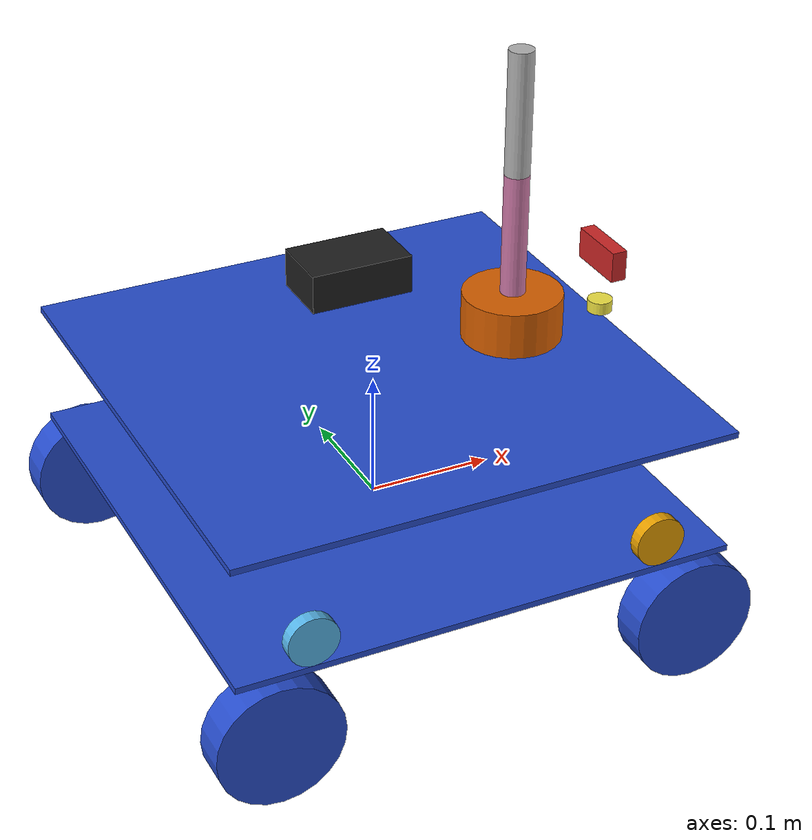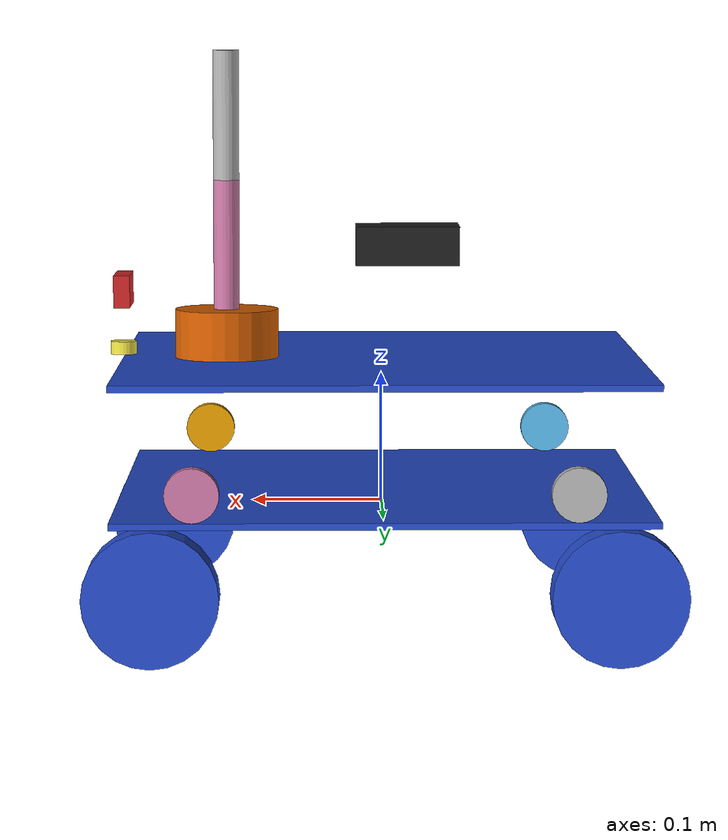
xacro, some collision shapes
<?xml version="1.0"?>
<robot name="ethan" xmlns:xacro="http://ros.org/wiki/xacro">

  <xacro:property name="pi" value="3.1415" />
  <xacro:property name="camera_link" value="0.05" /> <!-- Size of square 'camera' box -->
  <xacro:property name="length" value="0.4" />
  <xacro:property name="width" value="0.4" />
  <xacro:property name="height" value="0.005" />
  <xacro:property name="arm_l" value="0.1" />
  <xacro:property name="arm_r" value="0.01" />
  <xacro:property name="arm2_mass" value="0.2" />
  <xacro:property name="arm2_l" value="0.09" />
  <xacro:property name="arm2_r" value="0.01" />
  <xacro:property name="arm_mass" value="0.2" />
  <xacro:property name="disc_l" value="0.04" />
  <xacro:property name="disc_r" value="0.04" />
  <xacro:property name="disc_mass" value="0.2" />
  <xacro:property name="holder_l" value="0.01" />
  <xacro:property name="holder_r" value="0.01" />
  <xacro:property name="holder_mass" value="0.2" />
  <xacro:property name="mass" value="50" />
  <xacro:property name="hinge_r" value="0.02" />
  <xacro:property name="hinge_l" value="0.01" />
  <xacro:property name="hinge_mass" value="0.2" />
  <xacro:include filename="$(find ethan_description)/urdf/macro.xacro" />
  <xacro:include filename="$(find ethan_description)/urdf/gazebo.xacro" />
  <xacro:property name="wheel_mass" value="2" />
  <xacro:property name="wheel_radius" value="0.05" />
  <xacro:property name="wheel_length" value="0.03" />
  <xacro:property name="upper_mass" value="0.2" />

  <xacro:macro name="default_inertial" params="mass">
    <inertial>
      <mass value="${mass}" />
      <inertia ixx="1.0" ixy="0.0" ixz="0.0" iyy="1.0" iyz="0.0" izz="1.0" />
    </inertial>
  </xacro:macro>

   <link name="base_footprint"/>

  <joint name="base_joint" type="fixed">
    <parent link="base_footprint"/>
    <child link="link_chassis"/>
    <origin xyz="0.0 0.0 0.010" rpy="0 0 0"/>
  </joint>

  <link name="link_chassis">
   <!-- pose and inertial -->
   <inertial>
    <mass value="${mass}" />
    <inertia ixx="${mass*(width*width + height*height)/12}" ixy="0.0" ixz="0.0" iyy="${mass*(width*width + height*height)/12}" iyz="0.0" izz="${mass*(width*width + length*length)/12}" />
  </inertial>

  <collision name="collision_chassis">
    <geometry>
      <box size="${length} ${width} ${height}"/>
    </geometry>
  </collision>
  <visual>
    <origin rpy="0 0 0" xyz="0 0 0"/>
    <geometry>
      <box size="${length} ${width} ${height}"/>
    </geometry>
    <material name="blue"/>
  </visual>

</link>

<xacro:link_wheel name="link_right_wheel_front" mass="${wheel_mass}" r="${wheel_radius}" l="${wheel_length}" />
<xacro:link_wheel name="link_left_wheel_front" mass="${wheel_mass}" r="${wheel_radius}" l="${wheel_length}"/>
<xacro:link_wheel name="link_right_wheel_back" mass="${wheel_mass}" r="${wheel_radius}" l="${wheel_length}" />
<xacro:link_wheel name="link_left_wheel_back" mass="${wheel_mass}" r="${wheel_radius}" l="${wheel_length}"/>
<xacro:joint_wheel name="joint_right_wheel_front"  child="link_right_wheel_front"  origin_xyz="0.17 -0.195 -0.0525"  />
<xacro:joint_wheel name="joint_left_wheel_front"   child="link_left_wheel_front"   origin_xyz="0.17 0.195 -0.0525"  />
<xacro:joint_wheel name="joint_right_wheel_back"  child="link_right_wheel_back"  origin_xyz="-0.17 -0.195 -0.0525"  />
<xacro:joint_wheel name="joint_left_wheel_back"   child="link_left_wheel_back"   origin_xyz="-0.17 0.195 -0.0525"  />

<link name="left_scissor_hinge_front">
  <inertial>
   <mass value="0.2"/>
   <origin rpy="0 1.5707 1.5707" xyz="0 0 0"/>
   <inertia ixx="${hinge_mass*(3*hinge_r*hinge_r+ hinge_l*hinge_l)/12}" ixy = "0" ixz = "0" iyy="${hinge_mass*(3*hinge_r*hinge_r+hinge_l*hinge_l)/12}" iyz = "0" izz="${hinge_mass*(hinge_r*hinge_r)/2}" />
 </inertial>
 <collision name="left_scissor_hinge_front_collision">
  <origin rpy="0 1.5707 1.5707" xyz="0 0 0"/>
  <geometry>
    <cylinder length="${hinge_l}" radius="${hinge_r}"/>
  </geometry>
</collision>
<visual name="left_scissor_hinge_front_visual">
  <origin rpy="0 1.5707 1.5707" xyz="0 0 0"/>
  <geometry>
    <cylinder length="${hinge_l}" radius="${hinge_r}"/>
  </geometry>
</visual>
</link>

<joint name="left_scissor_hinge_front_joint" type="fixed">
  <axis xyz="0 1 0" />
  <origin xyz="0.14 0.195 0.0225" rpy="0 0 0"/>
  <parent link="link_chassis"/>
  <child link="left_scissor_hinge_front"/>
</joint>

<link name="left_scissor_hinge_back">
  <inertial>
   <mass value="0.2"/>
   <origin rpy="0 1.5707 1.5707" xyz="0 0 0"/>
   <inertia ixx="${hinge_mass*(3*hinge_r*hinge_r+ hinge_l*hinge_l)/12}" ixy = "0" ixz = "0" iyy="${hinge_mass*(3*hinge_r*hinge_r+hinge_l*hinge_l)/12}" iyz = "0" izz="${hinge_mass*(hinge_r*hinge_r)/2}" />
 </inertial>
 <collision name="left_scissor_hinge_back_back_collision">
  <origin rpy="0 1.5707 1.5707" xyz="0 0 0"/>
  <geometry>
    <cylinder length="${hinge_l}" radius="${hinge_r}"/>
  </geometry>
</collision>
<visual name="left_scissor_hinge_back_visual">
  <origin rpy="0 1.5707 1.5707" xyz="0 0 0"/>
  <geometry>
    <cylinder length="${hinge_l}" radius="${hinge_r}"/>
  </geometry>
</visual>
</link>

<joint name="left_scissor_hinge_back_joint" type="prismatic">
  <origin xyz="-0.14 0.195 0.0225" rpy="0.0 0.0 0.0"/>
  <parent link="link_chassis" />
  <child link="left_scissor_hinge_back" />
  <axis xyz="1 0 0" />
  <limit effort="10000" lower="0.0" upper="0.15" velocity="1" />
</joint>

<link name="right_scissor_hinge_front">
  <inertial>
   <mass value="0.2"/>
   <origin rpy="0 1.5707 1.5707" xyz="0 0 0"/>
   <inertia ixx="${hinge_mass*(3*hinge_r*hinge_r+ hinge_l*hinge_l)/12}" ixy = "0" ixz = "0" iyy="${hinge_mass*(3*hinge_r*hinge_r+hinge_l*hinge_l)/12}" iyz = "0" izz="${hinge_mass*(hinge_r*hinge_r)/2}" />
 </inertial>
 <collision name="right_scissor_hinge_front_collision">
  <origin rpy="0 1.5707 1.5707" xyz="0 0 0"/>
  <geometry>
    <cylinder length="${hinge_l}" radius="${hinge_r}"/>
  </geometry>
</collision>
<visual name="right_scissor_hinge_front_visual">
  <origin rpy="0 1.5707 1.5707" xyz="0 0 0"/>
  <geometry>
    <cylinder length="${hinge_l}" radius="${hinge_r}"/>
  </geometry>
</visual>
</link>

<joint name="right_scissor_hinge_front_joint" type="fixed">
  <axis xyz="0 1 0" />
  <origin xyz="0.14 -0.195 0.0225" rpy="0 0 0"/>
  <parent link="link_chassis"/>
  <child link="right_scissor_hinge_front"/>
</joint>

<link name="right_scissor_hinge_back">
  <inertial>
   <mass value="0.2"/>
   <origin rpy="0 1.5707 1.5707" xyz="0 0 0"/>
   <inertia ixx="${hinge_mass*(3*hinge_r*hinge_r+ hinge_l*hinge_l)/12}" ixy = "0" ixz = "0" iyy="${hinge_mass*(3*hinge_r*hinge_r+hinge_l*hinge_l)/12}" iyz = "0" izz="${hinge_mass*(hinge_r*hinge_r)/2}" />
 </inertial>
 <collision name="right_scissor_hinge_back_back_collision">
  <origin rpy="0 1.5707 1.5707" xyz="0 0 0"/>
  <geometry>
    <cylinder length="${hinge_l}" radius="${hinge_r}"/>
  </geometry>
</collision>
<visual name="right_scissor_hinge_back_visual">
  <origin rpy="0 1.5707 1.5707" xyz="0 0 0"/>
  <geometry>
    <cylinder length="${hinge_l}" radius="${hinge_r}"/>
  </geometry>
</visual>
</link>

<joint name="right_scissor_hinge_back_joint" type="prismatic">
  <origin xyz="-0.14 -0.195 0.0225" rpy="0.0 0.0 0.0"/>
  <parent link="link_chassis" />
  <child link="right_scissor_hinge_back" />
  <axis xyz="1 0 0" />
  <limit effort="10000" lower="0.0" upper="0.15" velocity="1" />
</joint>

<link name="upper_platform">
  <inertial>
    <mass value="${upper_mass}" />
    <inertia ixx="${upper_mass*(width*width + height*height)/12}" ixy="0.0" ixz="0.0" iyy="${upper_mass*(width*width + height*height)/12}" iyz="0.0" izz="${upper_mass*(width*width + length*length)/12}" />
  </inertial>

  <collision name="collision_chassis">
    <geometry>
      <box size="${length} ${width} ${height}"/>
    </geometry>
  </collision>

  <visual>
    <origin rpy="0 0 0" xyz="0 0 0"/>
    <geometry>
      <box size="${length} ${width} ${height}"/>
    </geometry>
    <material name="blue"/>
  </visual>

</link>

<joint name="platform_joint" type="prismatic">
  <origin xyz="0 0 0.1" rpy="0.0 0.0 0.0"/>
  <parent link="link_chassis" />
  <child link="upper_platform" />
  <axis xyz="0 0 1" />
  <limit effort="10000" lower="0" upper="0.80" velocity="1" />
</joint>

<link name="holder">
  <inertial>
    <mass value="0.2"/>
    <origin rpy="0 0 0" xyz="0 0 0"/>
    <inertia ixx="${holder_mass*(3*holder_r*holder_r+ holder_l*holder_l)/12}" ixy = "0" ixz = "0" iyy="${holder_mass*(3*holder_r*holder_r+holder_l*holder_l)/12}" iyz = "0" izz="${holder_mass*(holder_r*holder_r)/2}" />
  </inertial>
  <collision name="holder_collision">
    <origin rpy="0 0 0" xyz="0 0 ${holder_l/2}"/>
    <geometry>
      <cylinder length="${holder_l}" radius="${ holder_r}"/>
    </geometry>
  </collision>
  <visual name="disc_visual">
    <origin rpy="0 0 0" xyz="0 0 ${holder_l/2}"/>
    <geometry>
      <cylinder length="${holder_l}" radius="${holder_r}"/>
    </geometry>
  </visual>
</link>

<joint name="holder_joint" type="revolute">
  <origin xyz="0.2 0 ${holder_l/2}" rpy="0 0 0"/>
  <parent link="upper_platform"/>
  <child link="holder"/>
  <axis xyz="0 0 1" />
  <limit effort="3900" lower="-1.570796" upper="1.570796" velocity="1"/>
</joint>

<joint name="camera_joint" type="fixed">
  <axis xyz="0 1 0" />
  <origin xyz="0 0 ${holder_l/2 + camera_link/2 + 0.02}" rpy="0 0 0"/>
  <parent link="holder"/>
  <child link="camera_link"/>
</joint>

<!-- Camera -->
<link name="camera_link">
  <collision>
    <origin xyz="0 0 0" rpy="0 0 0"/>
    <geometry>
      <box size="${camera_link/2} ${camera_link} ${camera_link/2}"/>
    </geometry>
  </collision>

  <visual>
    <origin xyz="0 0 0" rpy="0 0 0"/>
    <geometry>
      <box size="${camera_link/4} ${camera_link} ${camera_link/2}"/>
    </geometry>
    <material name="red"/>
  </visual>

  <inertial>
    <mass value="1e-5" />
    <origin xyz="0 0 0" rpy="0 0 0"/>
    <inertia ixx="1e-6" ixy="0" ixz="0" iyy="1e-6" iyz="0" izz="1e-6" />
  </inertial>
</link>

<link name="disc">
  <inertial>
    <mass value="0.2"/>
    <origin rpy="0 0 0" xyz="0 0 0"/>
    <inertia ixx="${disc_mass*(3*disc_r*disc_r+ disc_l*disc_l)/12}" ixy = "0" ixz = "0" iyy="${disc_mass*(3*disc_r*disc_r+disc_l*disc_l)/12}" iyz = "0" izz="${disc_mass*(disc_r*disc_r)/2}" />
  </inertial>
  <collision name="arm1_collision">
    <origin rpy="0 0 0" xyz="0 0 ${disc_l/2}"/>
    <geometry>
      <cylinder length="${disc_l}" radius="${ disc_r}"/>
    </geometry>
  </collision>
  <visual name="disc_visual">
    <origin rpy="0 0 0" xyz="0 0 ${disc_l/2}"/>
    <geometry>
      <cylinder length="${disc_l}" radius="${disc_r}"/>
    </geometry>
  </visual>
</link>

<joint name="disc_joint" type="revolute">
  <origin xyz="0.12 0 0" rpy="0 0 0"/>
  <parent link="upper_platform"/>
  <child link="disc"/>
  <axis xyz="0 0 1" />
  <limit effort="3900" lower="-1.570796" upper="1.570796" velocity="1"/>
</joint>

<link name="arm1">
  <inertial>
    <mass value="0.2"/>
    <origin rpy="0 0 0" xyz="0 0 ${arm_l/2}"/>
    <inertia ixx="${arm_mass*(3*arm_r*arm_r+arm_l*arm_l)/12}" ixy = "0" ixz = "0" iyy="${arm_mass*(3*arm_r*arm_r+arm_l*arm_l)/12}" iyz = "0" izz="${arm_mass*(arm_r*arm_r)/2}" />
  </inertial>
  <collision name="arm1_collision">
    <origin rpy="0 0 0" xyz="0 0 ${arm_l/2}"/>
    <geometry>
      <cylinder length="${arm_l}" radius="${arm_r}"/>
    </geometry>
  </collision>
  <visual name="arm1_visual">
    <origin rpy="0 0 0" xyz="0 0 ${arm_l/2}"/>
    <geometry>
      <cylinder length="${arm_l}" radius="${arm_r}"/>
    </geometry>
  </visual>
</link>

<joint name="arm1_joint" type="revolute">
  <origin xyz="0 0 ${disc_l}" rpy="0 0 0"/>
  <parent link="disc"/>
  <child link="arm1"/>
  <axis xyz="0 1 0" />
  <limit effort="3900" lower="-1.570796" upper="1.570796" velocity="1"/>
</joint>

<link name="arm2">
  <inertial>
    <mass value="0.2"/>
    <origin rpy="0 0 0" xyz="0 0 ${arm_l/2}"/>
    <inertia ixx="${arm_mass*(3*arm_r*arm_r+arm_l*arm_l)/12}" ixy = "0" ixz = "0" iyy="${arm_mass*(3*arm_r*arm_r+arm_l*arm_l)/12}" iyz = "0" izz="${arm_mass*(arm_r*arm_r)/2}" />
  </inertial>
  <collision name="arm2_collision">
    <origin rpy="0 0 0" xyz="0 0 ${arm_l/2}"/>
    <geometry>
      <cylinder length="${arm_l}" radius="${arm_r}"/>
    </geometry>
  </collision>
  <visual name="arm2_visual">
    <origin rpy="0 0 0" xyz="0 0 ${arm_l/2}"/>
    <geometry>
      <cylinder length="${arm_l}" radius="${arm_r}"/>
    </geometry>
  </visual>
</link>

<joint name="arm2_joint" type="revolute">
  <origin xyz="0 0 ${arm_l}" rpy="0 0 0"/>
  <parent link="arm1"/>
  <child link="arm2"/>
  <axis xyz="0 1 0" />
  <limit effort="3900" lower="0" upper="3.14" velocity="1"/>

</joint>

<!-- Hokuyo Laser -->
<link name="hokuyo_link">
  <collision>
    <origin xyz="0 0 0" rpy="0 0 0"/>
    <geometry>
      <box size="0.08 0.05 0.03"/>
    </geometry>
  </collision>

  <visual>
    <origin xyz="0 0 0" rpy="0 0 0"/>
    <geometry>
      <mesh filename="package://ethan_description/mesh/lds.stl" scale="0.001 0.001 0.001"/>
      <box size="0.08 0.05 0.03"/>
    </geometry>
  </visual>

  <inertial>
    <mass value="1e-5" />
    <origin xyz="0 0 0" rpy="0 0 0"/>
    <inertia ixx="1e-6" ixy="0" ixz="0" iyy="1e-6" iyz="0" izz="1e-6" />
  </inertial>
</link>

<joint name="hokuyo_joint" type="fixed">
  <axis xyz="0 1 0" />
  <origin xyz="-0.02 0 0.09" rpy="0 0 0"/>
  <parent link="upper_platform"/>
  <child link="hokuyo_link"/>
</joint>

<transmission name="link_left_wheel_front_trans">
  <type>transmission_interface/SimpleTransmission</type>
  <actuator name="link_left_wheel_front_motor">
    <mechanicalReduction>1</mechanicalReduction>
  </actuator>
  <joint name="joint_left_wheel_front">
    <hardwareInterface>VelocityJointInterface</hardwareInterface>
  </joint>
</transmission>

<transmission name="link_left_wheel_back_trans">
  <type>transmission_interface/SimpleTransmission</type>
  <actuator name="link_left_wheel_back_motor">
    <mechanicalReduction>1</mechanicalReduction>
  </actuator>
  <joint name="joint_left_wheel_back">
    <hardwareInterface>VelocityJointInterface</hardwareInterface>
  </joint>
</transmission>

<transmission name="link_right_wheel_front_trans">
  <type>transmission_interface/SimpleTransmission</type>
  <actuator name="link_right_wheel_front_motor">
    <mechanicalReduction>1</mechanicalReduction>
  </actuator>
  <joint name="joint_right_wheel_front">
    <hardwareInterface>VelocityJointInterface</hardwareInterface>
  </joint>
</transmission>

<transmission name="link_right_wheel_back_trans">
  <type>transmission_interface/SimpleTransmission</type>
  <actuator name="link_right_wheel_back_motor">
    <mechanicalReduction>1</mechanicalReduction>
  </actuator>
  <joint name="joint_right_wheel_back">
    <hardwareInterface>VelocityJointInterface</hardwareInterface>
  </joint>
</transmission>

<transmission name="platform_trans">
  <type>transmission_interface/SimpleTransmission</type>
  <actuator name="platform_extension_motor">
    <mechanicalReduction>1</mechanicalReduction>
  </actuator>
  <joint name="platform_joint">
    <hardwareInterface>PositionJointInterface</hardwareInterface>
  </joint>
</transmission>

<transmission name="arm1_trans">
  <type>transmission_interface/SimpleTransmission</type>
  <actuator name="arm1_motor">
    <mechanicalReduction>1</mechanicalReduction>
  </actuator>
  <joint name="arm1_joint">
    <hardwareInterface>PositionJointInterface</hardwareInterface>
  </joint>
</transmission>

<transmission name="arm2_trans">
  <type>transmission_interface/SimpleTransmission</type>
  <actuator name="arm2_motor">
    <mechanicalReduction>1</mechanicalReduction>
  </actuator>
  <joint name="arm2_joint">
    <hardwareInterface>PositionJointInterface</hardwareInterface>
  </joint>
</transmission>

<transmission name="disc_trans">
  <type>transmission_interface/SimpleTransmission</type>
  <actuator name="disc_motor">
    <mechanicalReduction>1</mechanicalReduction>
  </actuator>
  <joint name="disc_joint">
    <hardwareInterface>PositionJointInterface</hardwareInterface>
  </joint>
</transmission>

<transmission name="holder_trans">
  <type>transmission_interface/SimpleTransmission</type>
  <actuator name="holder_motor">
    <mechanicalReduction>1</mechanicalReduction>
  </actuator>
  <joint name="holder_joint">
    <hardwareInterface>PositionJointInterface</hardwareInterface>
  </joint>
</transmission>

<gazebo reference="link_left_wheel_front">
  <mu1 value="200.0"/>
  <mu2 value="100.0"/>
  <kp value="10000000.0" />
  <kd value="1.0" />
</gazebo>

<gazebo reference="link_left_wheel_back">
  <mu1 value="200.0"/>
  <mu2 value="100.0"/>
  <kp value="10000000.0" />
  <kd value="1.0" />
</gazebo>

<gazebo reference="link_right_wheel_front">
  <mu1 value="200.0"/>
  <mu2 value="100.0"/>
  <kp value="10000000.0" />
  <kd value="1.0" />
</gazebo>

<gazebo reference="link_right_wheel_back">
  <mu1 value="200.0"/>
  <mu2 value="100.0"/>
  <kp value="10000000.0" />
  <kd value="1.0" />
</gazebo>

<gazebo>
  <plugin name="gazebo_ros_control" filename="libgazebo_ros_control.so">
    <robotNamespace>/</robotNamespace>
    <odometryTopic>odom</odometryTopic>
    <odometryFrame>odom</odometryFrame>
    <robotBaseFrame>base_footprint</robotBaseFrame>
  </plugin>
</gazebo>

</robot>

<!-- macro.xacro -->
<!--
   we will use macros, which are like functions, to reduce the remaining code in m2wr.xacro file.
-->
<robot xmlns:xacro="http://www.ros.org/wiki/xacro">
    <xacro:macro name="link_wheel" params="name mass r l">
      <link name="${name}">
        <inertial>
          <mass value="${mass}"/>
          <origin rpy="0 1.5707 1.5707" xyz="0 0 0"/>
          <inertia ixx="${mass*(3*r*r+l*l)/12}" ixy = "0" ixz = "0" iyy="${mass*(3*r*r+l*l)/12}" iyz = "0" izz="${mass*(r*r)/2}" />
        </inertial>
        <collision name="link_right_wheel_collision">
          <origin rpy="0 1.5707 1.5707" xyz="0 0 0"/>
          <geometry>
            <cylinder length="${l}" radius="${r}"/>
          </geometry>
          <surface>
            <friction>
              <ode>
                <mu>10000</mu>
                <mu2>10000</mu2>
                <mu3>10000</mu3>
              </ode>
            </friction>
          </surface>
        </collision>
        <visual name="${name}_visual">
          <origin rpy="0 1.5707 1.5707" xyz="0 0 0"/>
          <geometry>
            <cylinder length="${l}" radius="${r}"/>
          </geometry>
        </visual>
      </link>
    </xacro:macro>

    <!--
      The second macro accepts three parameters name, child and origin_xyz and it creates a joint link.
    -->
    <xacro:macro name="joint_wheel" params="name child origin_xyz">
      <joint name="${name}" type="continuous">
        <origin rpy="0 0 0" xyz="${origin_xyz}"/>
        <child link="${child}"/>
        <parent link="link_chassis"/>
        <axis rpy="0 0 0" xyz="0 1 0"/>
        <limit effort="10000" velocity="1000"/>
        <joint_properties damping="1.0" friction="1.0"/>
      </joint>

    </xacro:macro>

    <!--
      new macro for controlling the moment of inertia of the sensor cilinder
    -->
    <xacro:macro name="cylinder_inertia" params="mass r l">
      <inertia ixx="${mass*(3*r*r+l*l)/12}" ixy = "0" ixz = "0" iyy="${mass*(3*r*r+l*l)/12}" iyz = "0" izz="${mass*(r*r)/2}" />
    </xacro:macro>

    <xacro:macro name="scissor_plate" params="name mass l w h">
        <link name="${name}">

          <inertial>
          <origin rpy="0 0 0" xyz="0 0 0.15"/>
          <mass value="${mass}" />
          <inertia ixx="${mass*(w*w + h*h)/12}" ixy="0.0" ixz="0.0" iyy="${mass*(w*w + h*h)/12}" iyz="0.0" izz="${mass*(w*w + l*l)/12}" />
        </inertial>
            <collision name="${name}_collison">
              <origin rpy="0 0 0" xyz="0 0 0.15"/>
              <geometry>
                <box size="${l} ${w} ${h}"/>
              </geometry>
            </collision>
            <visual name="${name}_visual">
              <origin rpy="0 0 0" xyz="0 0 0.15"/>
              <geometry>
                <box size="${l} ${w} ${h}"/>
              </geometry>
            </visual>
        </link>
    </xacro:macro>

     <xacro:macro name="joint_scissor" params="name child parent origin_xyz">
      <joint name="${name}" type="continuous">
        <axis xyz="0 1 0" rpy="0 0 0" />
        <child link="${child}"/>
        <parent link="${parent}" />
        <origin rpy="0 0  0" xyz="${origin_xyz}"/>
      </joint>

    </xacro:macro>

</robot>
